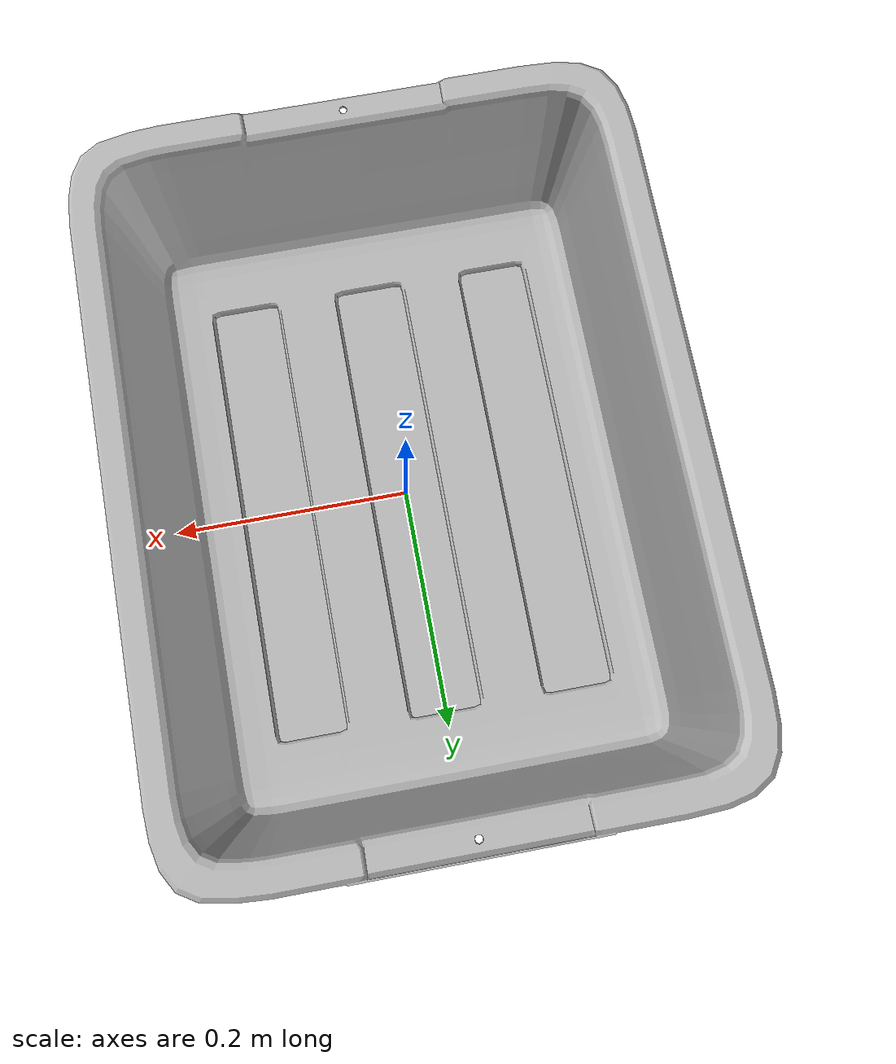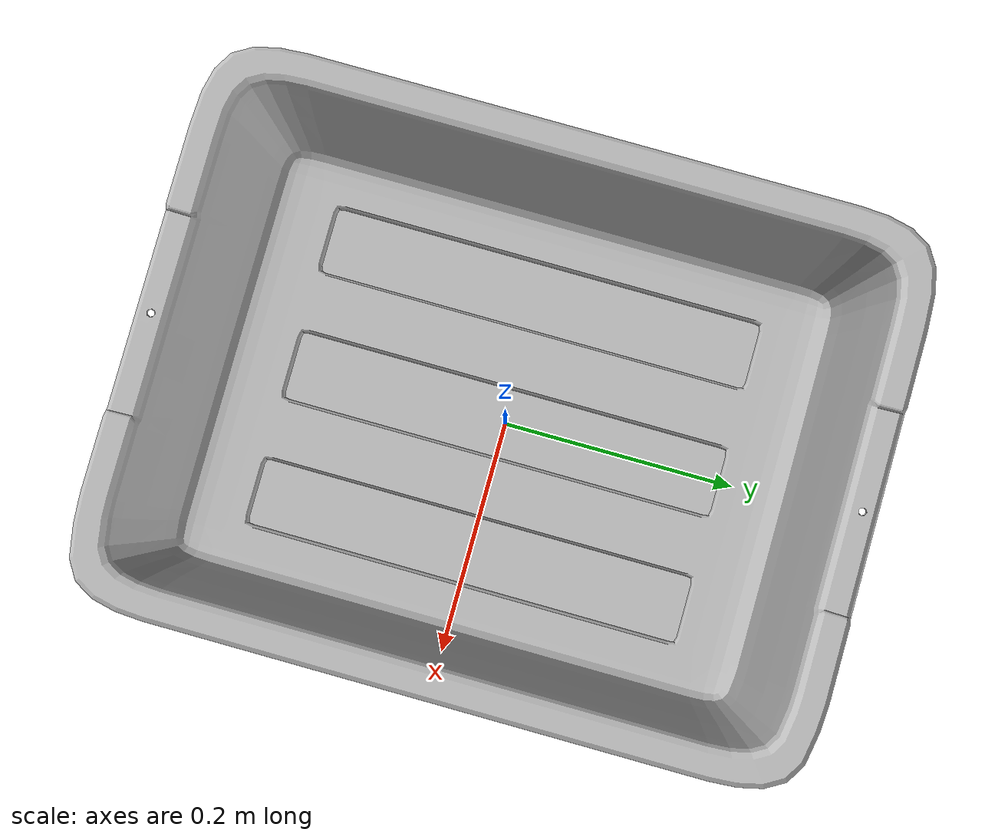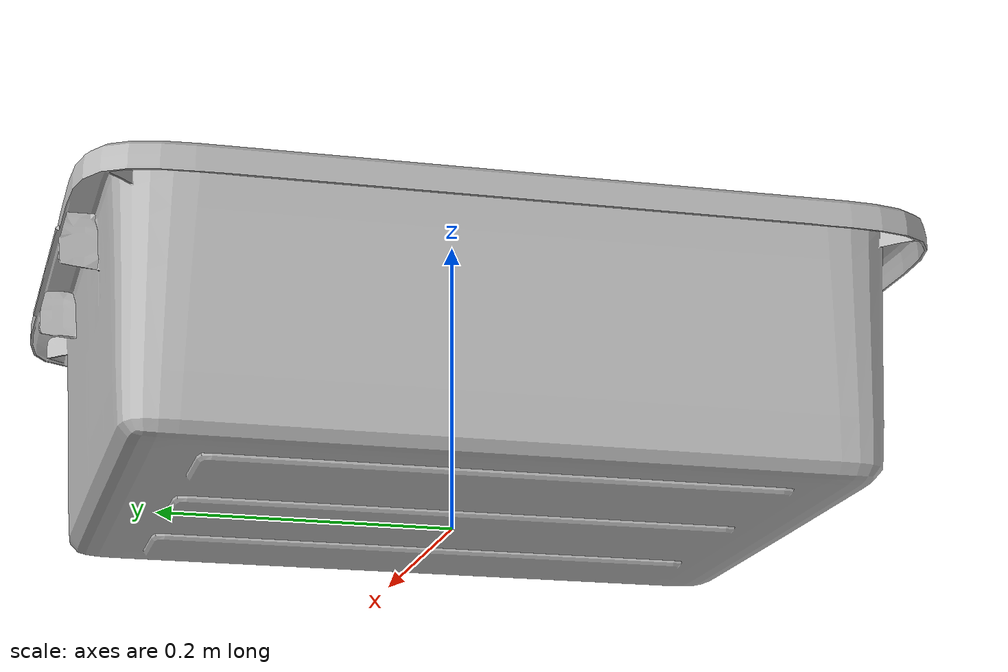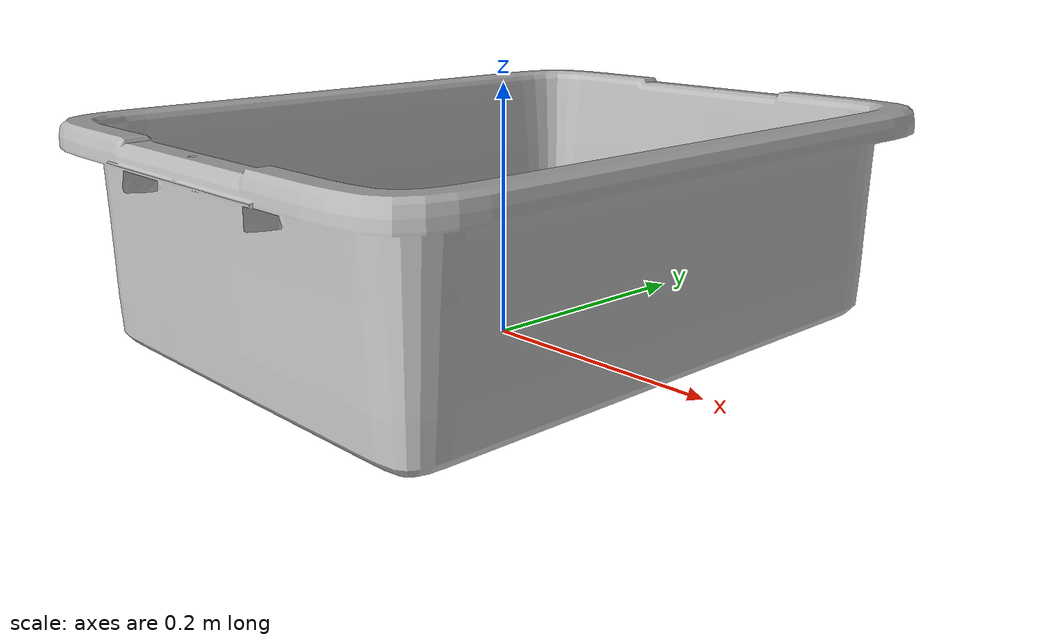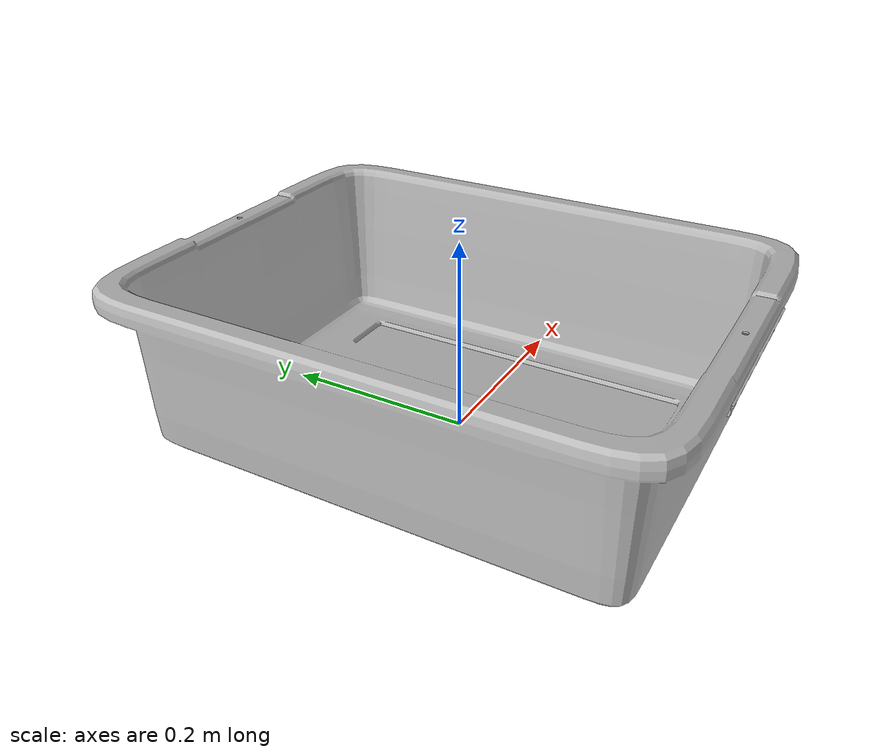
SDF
<?xml version="1.0"?>
<sdf version="1.7">
  <model name="tote">
    <link name="tote_base">
      <visual name="visual">
        <geometry>
          <mesh>
            <uri>package://blender_models/tote/ToteA.L.gltf</uri>
          </mesh>
        </geometry>
      </visual>
      <collision name="collision">
        <geometry>
          <mesh>
            <uri>package://blender_models/tote/ToteA.L.gltf</uri>
          </mesh>
        </geometry>
      </collision>
    </link>
  </model>
</sdf>
